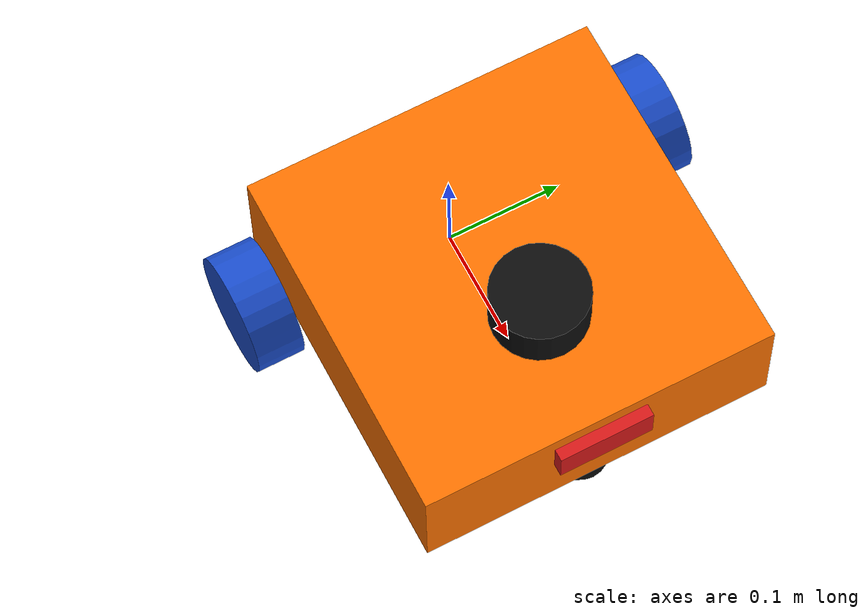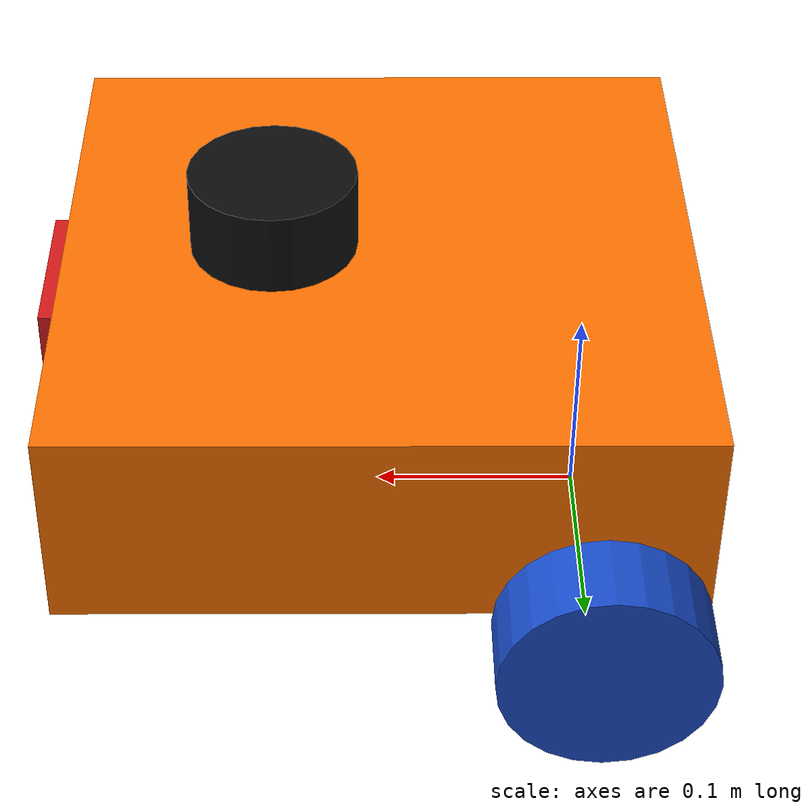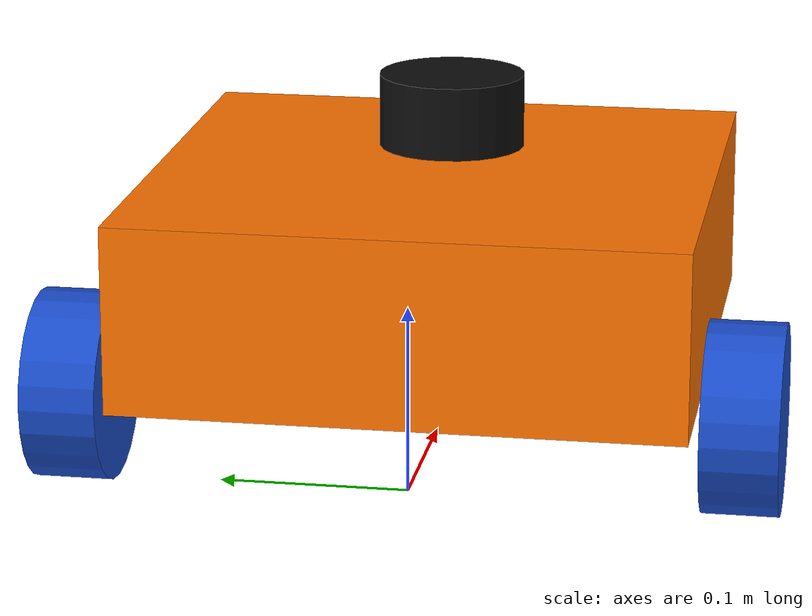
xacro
<?xml version="1.0"?>
<robot xmlns:xacro="http://www.ros.org/wiki/xacro" name="amr_robot">

  <!-- AUTONOMOUS MOBILE ROBOT (AMR) MASTER XACRO                                -->
  <!-- Differential Drive: 2 Powered Wheels + 1 Passive Front Caster             -->

  <!-- Include Robot Kinematic & Visual Core -->
  <xacro:include filename="robot_core.xacro" />

  <!-- Include Gazebo Harmonic Simulation Control Plugins -->
  <xacro:include filename="gz_control.xacro" />

  <!-- Include Sensors (LiDAR, Camera, IMU) -->
  <xacro:include filename="lidar.xacro" />
  <xacro:include filename="camera.xacro" />
  <xacro:include filename="imu.xacro" />
</robot>

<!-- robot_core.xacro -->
<robot xmlns:xacro="http://www.ros.org/wiki/xacro">

  <!-- Include Inertial Macros and Materials -->
  <xacro:include filename="inertial_macros.xacro"/>
  <xacro:include filename="materials.xacro"/>

  <!-- ROBOT DIMENSIONS & CONSTANTS                                              -->
  <xacro:property name="chassis_length" value="0.30"/>   <!-- X dimension (m) -->
  <xacro:property name="chassis_width"  value="0.30"/>   <!-- Y dimension (m) -->
  <xacro:property name="chassis_height" value="0.10"/>   <!-- Z dimension (m) -->
  <xacro:property name="chassis_mass"   value="2.5"/>    <!-- Mass (kg) -->

  <xacro:property name="wheel_radius"   value="0.05"/>   <!-- Radius (5 cm = 0.05 m) -->
  <xacro:property name="wheel_length"   value="0.04"/>   <!-- Thickness/width (4 cm) -->
  <xacro:property name="wheel_mass"     value="0.2"/>    <!-- Wheel mass (kg) -->
  <xacro:property name="wheel_offset_y" value="0.175"/>  <!-- Half-track (wheelbase/2 = 35cm/2) -->

  <xacro:property name="caster_radius"  value="0.025"/>  <!-- Caster ball radius (2.5 cm) -->
  <xacro:property name="caster_mass"    value="0.1"/>    <!-- Caster mass (kg) -->
  <xacro:property name="caster_offset_x" value="0.22"/>  <!-- Front position along X -->

  <!-- 1. BASE FOOTPRINT (TF Root on Ground)                                      -->
  <!-- base_footprint is a 2D projection of the robot center on the ground floor.  -->
  <!-- Standard ROS coordinate frame: Z=0 at contact plane with the floor.        -->
  <link name="base_footprint"/>

  <!-- Joint: base_footprint -> base_link -->
  <!-- Elevates the robot coordinate origin by wheel_radius (0.05m) above ground -->
  <joint name="base_footprint_joint" type="fixed">
    <parent link="base_footprint"/>
    <child link="base_link"/>
    <origin xyz="0 0 ${wheel_radius}" rpy="0 0 0"/>
  </joint>

  <!-- 2. BASE LINK (Center of Drive Axle)                                       -->
  <!-- The kinematic center of rotation for a differential-drive robot.          -->
  <!-- X: Forward, Y: Left, Z: Up                                                -->
  <link name="base_link"/>

  <!-- 3. CHASSIS LINK                                                           -->
  <!-- The main robot body. Offset forward so wheels sit near the rear axle.    -->
  <joint name="chassis_joint" type="fixed">
    <parent link="base_link"/>
    <child link="chassis"/>
    <!-- Chassis center is offset along X by 0.10m and Z by 0.05m above axle -->
    <origin xyz="0.10 0 0.05" rpy="0 0 0"/>
  </joint>

  <link name="chassis">
    <!-- Visual Geometry (Rendered in RViz / Gazebo) -->
    <visual>
      <origin xyz="0 0 0" rpy="0 0 0"/>
      <geometry>
        <box size="${chassis_length} ${chassis_width} ${chassis_height}"/>
      </geometry>
      <material name="orange"/>
    </visual>

    <!-- Collision Geometry (Used by Physics Engine) -->
    <collision>
      <origin xyz="0 0 0" rpy="0 0 0"/>
      <geometry>
        <box size="${chassis_length} ${chassis_width} ${chassis_height}"/>
      </geometry>
    </collision>

    <!-- Inertial Dynamics (Rigid body physics for simulation) -->
    <xacro:inertial_box mass="${chassis_mass}" x="${chassis_length}" y="${chassis_width}" z="${chassis_height}">
      <origin xyz="0 0 0" rpy="0 0 0"/>
    </xacro:inertial_box>
  </link>

  <!-- 4. LEFT DRIVE WHEEL                                                       -->
  <!-- Continuous rotational joint along Y-axis of base_link.                     -->
  <!-- Cylinder in URDF defaults along Z axis, so rotated by -pi/2 around X.     -->
  <joint name="left_wheel_joint" type="continuous">
    <parent link="base_link"/>
    <child link="left_wheel_link"/>
    <!-- Left wheel placed at +Y (0.175m from center) -->
    <origin xyz="0 ${wheel_offset_y} 0" rpy="-${pi/2} 0 0"/>
    <axis xyz="0 0 1"/>
  </joint>

  <link name="left_wheel_link">
    <visual>
      <origin xyz="0 0 0" rpy="0 0 0"/>
      <geometry>
        <cylinder radius="${wheel_radius}" length="${wheel_length}"/>
      </geometry>
      <material name="blue"/>
    </visual>

    <collision>
      <origin xyz="0 0 0" rpy="0 0 0"/>
      <geometry>
        <cylinder radius="${wheel_radius}" length="${wheel_length}"/>
      </geometry>
    </collision>

    <xacro:inertial_cylinder mass="${wheel_mass}" length="${wheel_length}" radius="${wheel_radius}">
      <origin xyz="0 0 0" rpy="0 0 0"/>
    </xacro:inertial_cylinder>
  </link>

  <!-- 5. RIGHT DRIVE WHEEL                                                      -->
  <!-- Continuous rotational joint along Y-axis of base_link.                     -->
  <!-- Right wheel rotated by +pi/2 around X with axis pointing outward.         -->
  <joint name="right_wheel_joint" type="continuous">
    <parent link="base_link"/>
    <child link="right_wheel_link"/>
    <!-- Right wheel placed at -Y (-0.175m from center) -->
    <origin xyz="0 -${wheel_offset_y} 0" rpy="${pi/2} 0 0"/>
    <axis xyz="0 0 -1"/>
  </joint>

  <link name="right_wheel_link">
    <visual>
      <origin xyz="0 0 0" rpy="0 0 0"/>
      <geometry>
        <cylinder radius="${wheel_radius}" length="${wheel_length}"/>
      </geometry>
      <material name="blue"/>
    </visual>

    <collision>
      <origin xyz="0 0 0" rpy="0 0 0"/>
      <geometry>
        <cylinder radius="${wheel_radius}" length="${wheel_length}"/>
      </geometry>
    </collision>

    <xacro:inertial_cylinder mass="${wheel_mass}" length="${wheel_length}" radius="${wheel_radius}">
      <origin xyz="0 0 0" rpy="0 0 0"/>
    </xacro:inertial_cylinder>
  </link>

  <!-- 6. CASTER WHEEL (Front Support Ball)                                      -->
  <!-- Spherical omnidirectional passive support to balance differential drive.   -->
  <!-- Placed at front center (X = 0.22m).                                       -->
  <!-- Origin Z = -0.025m so bottom of sphere touches ground at Z = 0.          -->
  <joint name="caster_wheel_joint" type="fixed">
    <parent link="base_link"/>
    <child link="caster_wheel_link"/>
    <!-- Offset: X = front (0.22m), Y = center (0.0m), Z = -0.025m -->
    <origin xyz="${caster_offset_x} 0 -${caster_radius}" rpy="0 0 0"/>
  </joint>

  <link name="caster_wheel_link">
    <visual>
      <origin xyz="0 0 0" rpy="0 0 0"/>
      <geometry>
        <sphere radius="${caster_radius}"/>
      </geometry>
      <material name="black"/>
    </visual>

    <collision>
      <origin xyz="0 0 0" rpy="0 0 0"/>
      <geometry>
        <sphere radius="${caster_radius}"/>
      </geometry>
    </collision>

    <xacro:inertial_sphere mass="${caster_mass}" radius="${caster_radius}">
      <origin xyz="0 0 0" rpy="0 0 0"/>
    </xacro:inertial_sphere>
  </link>

  <!-- Gazebo friction parameters for caster wheel (frictionless ball) -->
  <gazebo reference="caster_wheel_link">
    <material>Gazebo/Black</material>
    <mu1 value="0.001"/>
    <mu2 value="0.001"/>
  </gazebo>

  <gazebo reference="chassis">
    <material>Gazebo/Orange</material>
  </gazebo>

  <gazebo reference="left_wheel_link">
    <material>Gazebo/Blue</material>
  </gazebo>

  <gazebo reference="right_wheel_link">
    <material>Gazebo/Blue</material>
  </gazebo>

</robot>

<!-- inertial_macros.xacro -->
<robot xmlns:xacro="http://www.ros.org/wiki/xacro">

  <!-- INERTIAL PROPERTY MACROS                                                  -->
  <!-- Standard formulas for calculating rigid-body inertia matrices             -->

  <!-- Solid Box Inertia: mass, x (depth), y (width), z (height) -->
  <xacro:macro name="inertial_box" params="mass x y z *origin">
    <inertial>
      <xacro:insert_block name="origin"/>
      <mass value="${mass}" />
      <inertia ixx="${(1/12) * mass * (y*y + z*z)}" ixy="0.0" ixz="0.0"
               iyy="${(1/12) * mass * (x*x + z*z)}" iyz="0.0"
               izz="${(1/12) * mass * (x*x + y*y)}" />
    </inertial>
  </xacro:macro>

  <!-- Solid Cylinder Inertia: mass, length (along z), radius -->
  <xacro:macro name="inertial_cylinder" params="mass length radius *origin">
    <inertial>
      <xacro:insert_block name="origin"/>
      <mass value="${mass}" />
      <inertia ixx="${(1/12) * mass * (3*radius*radius + length*length)}" ixy="0.0" ixz="0.0"
               iyy="${(1/12) * mass * (3*radius*radius + length*length)}" iyz="0.0"
               izz="${(1/2) * mass * (radius*radius)}" />
    </inertial>
  </xacro:macro>

  <!-- Solid Sphere Inertia: mass, radius -->
  <xacro:macro name="inertial_sphere" params="mass radius *origin">
    <inertial>
      <xacro:insert_block name="origin"/>
      <mass value="${mass}" />
      <inertia ixx="${(2/5) * mass * (radius*radius)}" ixy="0.0" ixz="0.0"
               iyy="${(2/5) * mass * (radius*radius)}" iyz="0.0"
               izz="${(2/5) * mass * (radius*radius)}" />
    </inertial>
  </xacro:macro>

</robot>

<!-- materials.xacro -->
<robot xmlns:xacro="http://www.ros.org/wiki/xacro">

  <!-- RVIZ COLOR DEFINITIONS                                                    -->

  <material name="white">
    <color rgba="1.0 1.0 1.0 1.0" />
  </material>

  <material name="orange">
    <color rgba="1.0 0.45 0.0 1.0" />
  </material>

  <material name="blue">
    <color rgba="0.1 0.3 0.8 1.0" />
  </material>

  <material name="black">
    <color rgba="0.05 0.05 0.05 1.0" />
  </material>

  <material name="grey">
    <color rgba="0.6 0.6 0.6 1.0" />
  </material>

  <material name="red">
    <color rgba="0.85 0.1 0.1 1.0" />
  </material>

</robot>

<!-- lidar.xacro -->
<robot xmlns:xacro="http://www.ros.org/wiki/xacro">

  <!-- 2D LIDAR SENSOR (360 Degree Laser Scanner)                                -->

  <!-- Joint: Mounted on top of the chassis -->
  <joint name="laser_joint" type="fixed">
    <parent link="chassis"/>
    <child link="laser_frame"/>
    <!-- Positioned slightly forward on the chassis top plate (z = 0.05 + 0.02 = 0.07m) -->
    <origin xyz="0.05 0 0.07" rpy="0 0 0"/>
  </joint>

  <!-- Physical LiDAR Link (Housing & Spinning Turret) -->
  <link name="laser_frame">
    <visual>
      <origin xyz="0 0 0" rpy="0 0 0"/>
      <geometry>
        <cylinder radius="0.04" length="0.04"/>
      </geometry>
      <material name="black"/>
    </visual>

    <collision>
      <origin xyz="0 0 0" rpy="0 0 0"/>
      <geometry>
        <cylinder radius="0.04" length="0.04"/>
      </geometry>
    </collision>

    <xacro:inertial_cylinder mass="0.1" length="0.04" radius="0.04">
      <origin xyz="0 0 0" rpy="0 0 0"/>
    </xacro:inertial_cylinder>
  </link>

  <!-- Gazebo Harmonic Ray/Lidar Sensor Simulation -->
  <gazebo reference="laser_frame">
    <material>Gazebo/Black</material>

    <sensor name="lidar" type="gpu_lidar">
      <pose>0 0 0 0 0 0</pose>
      <always_on>true</always_on>
      <visualize>true</visualize>
      <update_rate>10</update_rate>
      <topic>/scan</topic>
      <gz_frame_id>laser_frame</gz_frame_id>

      <lidar>
        <scan>
          <horizontal>
            <samples>360</samples>
            <resolution>1</resolution>
            <min_angle>-3.14159265</min_angle>  <!-- -180 degrees -->
            <max_angle>3.14159265</max_angle>   <!-- +180 degrees -->
          </horizontal>
        </scan>
        <range>
          <min>0.12</min>                      <!-- 12 cm minimum blind zone -->
          <max>12.0</max>                      <!-- 12 meters maximum range -->
          <resolution>0.01</resolution>
        </range>
        <noise>
          <type>gaussian</type>
          <mean>0.0</mean>
          <stddev>0.01</stddev>                <!-- 1 cm realistic measurement noise -->
        </noise>
      </lidar>
    </sensor>
  </gazebo>

</robot>

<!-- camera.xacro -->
<robot xmlns:xacro="http://www.ros.org/wiki/xacro">

  <!-- RGB CAMERA SENSOR                                                         -->

  <!-- Joint: Mounted at the front leading edge of the chassis -->
  <joint name="camera_joint" type="fixed">
    <parent link="chassis"/>
    <child link="camera_link"/>
    <!-- Chassis length is 0.30m (half = 0.15m from chassis center), mounted at front face -->
    <origin xyz="0.15 0 0.02" rpy="0 0 0"/>
  </joint>

  <!-- Physical Camera Body (Robot Coordinate Frame: X=Forward, Y=Left, Z=Up) -->
  <link name="camera_link">
    <visual>
      <origin xyz="0 0 0" rpy="0 0 0"/>
      <geometry>
        <box size="0.02 0.08 0.03"/>
      </geometry>
      <material name="red"/>
    </visual>

    <collision>
      <origin xyz="0 0 0" rpy="0 0 0"/>
      <geometry>
        <box size="0.02 0.08 0.03"/>
      </geometry>
    </collision>

    <xacro:inertial_box mass="0.05" x="0.02" y="0.08" z="0.03">
      <origin xyz="0 0 0" rpy="0 0 0"/>
    </xacro:inertial_box>
  </link>

  <!-- CAMERA OPTICAL FRAME (Standard ROS REP 103 Computer Vision Convention)    -->
  <!-- Z=Forward (Viewing axis), X=Right, Y=Down                                 -->
  <!-- Rotated by: roll = -pi/2, pitch = 0, yaw = -pi/2                          -->
  <joint name="camera_optical_joint" type="fixed">
    <parent link="camera_link"/>
    <child link="camera_link_optical"/>
    <origin xyz="0 0 0" rpy="-${pi/2} 0 -${pi/2}"/>
  </joint>

  <link name="camera_link_optical"/>

  <!-- Gazebo Harmonic Camera Sensor Simulation -->
  <gazebo reference="camera_link">
    <material>Gazebo/Red</material>

    <sensor name="camera" type="camera">
      <pose>0 0 0 0 0 0</pose>
      <always_on>true</always_on>
      <visualize>true</visualize>
      <update_rate>30</update_rate>
      <topic>/camera/image_raw</topic>
      <gz_frame_id>camera_link_optical</gz_frame_id>

      <camera>
        <horizontal_fov>1.089</horizontal_fov>  <!-- ~62.4 degrees FOV -->
        <image>
          <width>640</width>
          <height>480</height>
          <format>R8G8B8</format>
        </image>
        <clip>
          <near>0.05</near>
          <far>20.0</far>
        </clip>
        <noise>
          <type>gaussian</type>
          <mean>0.0</mean>
          <stddev>0.007</stddev>                <!-- Subtle sensor noise -->
        </noise>
      </camera>
    </sensor>
  </gazebo>

</robot>

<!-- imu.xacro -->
<robot xmlns:xacro="http://www.ros.org/wiki/xacro">

  <!-- INERTIAL MEASUREMENT UNIT (IMU) SENSOR                                    -->

  <!-- Joint: Positioned at the center of mass inside the chassis -->
  <joint name="imu_joint" type="fixed">
    <parent link="chassis"/>
    <child link="imu_link"/>
    <origin xyz="0 0 0" rpy="0 0 0"/>
  </joint>

  <!-- Physical / Virtual IMU Link -->
  <link name="imu_link">
    <visual>
      <origin xyz="0 0 0" rpy="0 0 0"/>
      <geometry>
        <box size="0.02 0.02 0.005"/>
      </geometry>
      <material name="grey"/>
    </visual>

    <collision>
      <origin xyz="0 0 0" rpy="0 0 0"/>
      <geometry>
        <box size="0.02 0.02 0.005"/>
      </geometry>
    </collision>

    <xacro:inertial_box mass="0.01" x="0.02" y="0.02" z="0.005">
      <origin xyz="0 0 0" rpy="0 0 0"/>
    </xacro:inertial_box>
  </link>

  <!-- Gazebo Harmonic IMU Sensor Simulation -->
  <gazebo reference="imu_link">
    <sensor name="imu" type="imu">
      <always_on>true</always_on>
      <update_rate>50</update_rate>
      <topic>/imu/data</topic>
      <gz_frame_id>imu_link</gz_frame_id>

      <imu>
        <angular_velocity>
          <x>
            <noise type="gaussian">
              <mean>0.0</mean>
              <stddev>2e-4</stddev>
            </noise>
          </x>
          <y>
            <noise type="gaussian">
              <mean>0.0</mean>
              <stddev>2e-4</stddev>
            </noise>
          </y>
          <z>
            <noise type="gaussian">
              <mean>0.0</mean>
              <stddev>2e-4</stddev>
            </noise>
          </z>
        </angular_velocity>
        <linear_acceleration>
          <x>
            <noise type="gaussian">
              <mean>0.0</mean>
              <stddev>1.7e-2</stddev>
            </noise>
          </x>
          <y>
            <noise type="gaussian">
              <mean>0.0</mean>
              <stddev>1.7e-2</stddev>
            </noise>
          </y>
          <z>
            <noise type="gaussian">
              <mean>0.0</mean>
              <stddev>1.7e-2</stddev>
            </noise>
          </z>
        </linear_acceleration>
      </imu>
    </sensor>
  </gazebo>

  <!-- Load IMU System Plugin in the Model -->
  <gazebo>
    <plugin filename="gz-sim-imu-system" name="gz::sim::systems::Imu">
    </plugin>
  </gazebo>

</robot>
